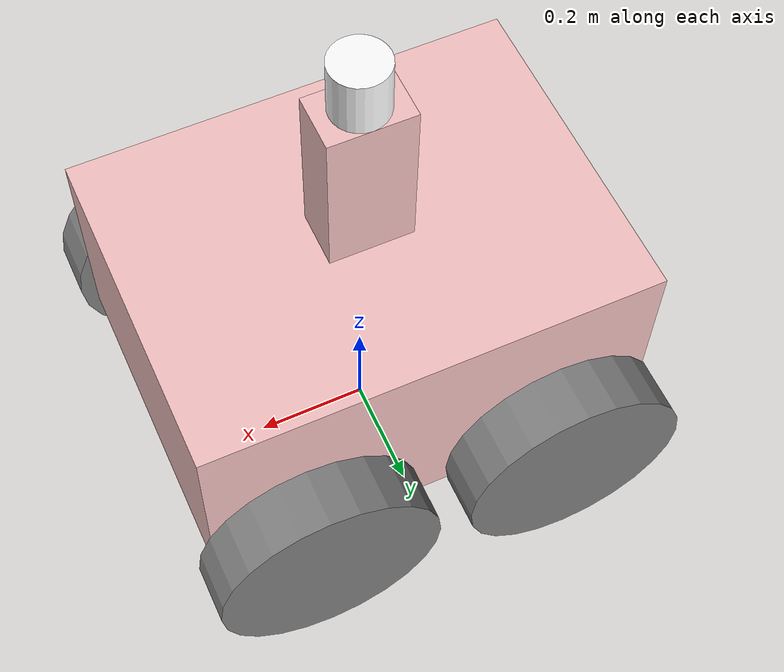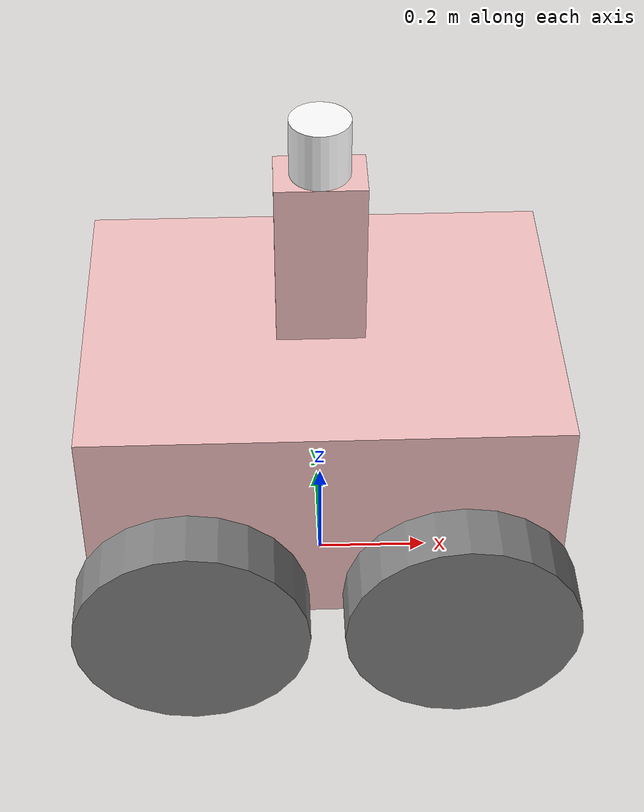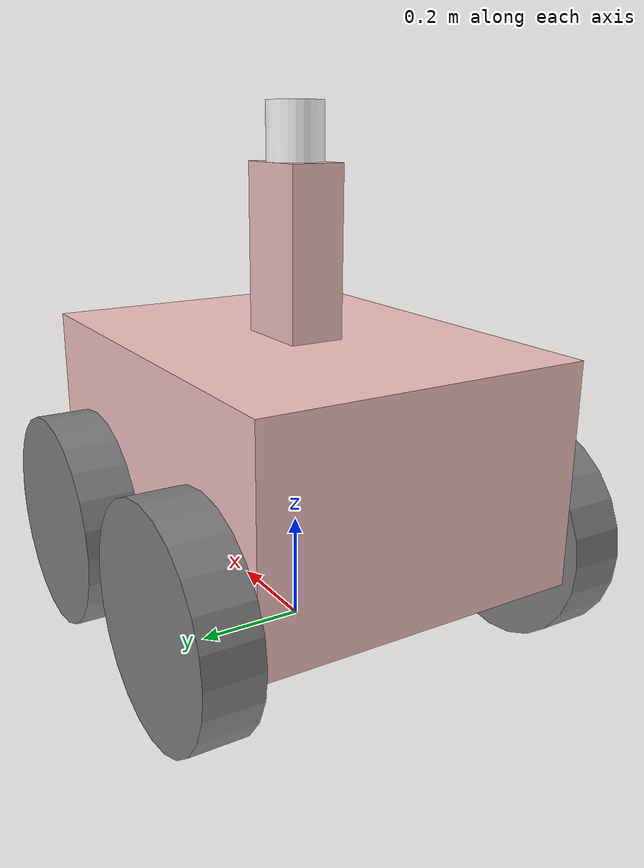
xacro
<?xml version="1.0"?>
<robot xmlns:xacro="http:/www.ros.org/wiki/xacro" name="my_robot">

    <material name="grey">
        <color rgba="0.5 0.5 0.5 1"/>
    </material>

    <material name="pink">
        <color rgba="0.96 0.76 0.76 1"/>
    </material>

    <material name="white">
        <color rgba="1 1 1 1"/>
    </material>

    <xacro:property name="base_length" value="0.8"/>
    <xacro:property name="base_width" value="0.6"/>
    <xacro:property name="base_height" value="0.4"/>
    <xacro:property name="base_mass" value="5"/>
    <xacro:property name="stand_height" value="0.3"/>
    <xacro:property name="stand_length" value="0.15"/>
    <xacro:property name="stand_width" value="0.1"/>
    <xacro:property name="stand_mass" value="1"/>
    <xacro:property name="wheel_radius" value="0.2"/>
    <xacro:property name="wheel_length" value="0.1"/>
    <xacro:property name="wheel_mass" value="1.2"/>
    <xacro:property name="camera_height" value="0.1"/>
    <xacro:property name="camera_length" value="0.1"/>
    <xacro:property name="camera_width" value="0.1"/>
    <xacro:property name="camera_mass" value="0.1"/>

    <xacro:include filename="$(find rover)/models/rover.gazebo"/>

    <joint name="stand_joint" type="fixed">
        <origin xyz="0 0 ${wheel_radius * 0.8 + base_height + stand_height/2}"/>
        <parent link="base_link"/>
        <child link="stand_link"/>
    </joint>

    <joint name="lidar_joint" type="fixed">
        <origin xyz="0 0 ${stand_height/2 + camera_height/2}"/>
        <parent link="stand_link"/>
        <child link="lidar_link"/>
    </joint>

    <joint name="imu_joint" type="fixed">
        <parent link="base_link"/>
        <child link="imu_link"/>
    </joint>

    <joint name="wheel_fr_joint" type="continuous">
        <parent link="base_link"/>
        <child link="wheel_fr_link"/>
        <axis xyz="0 1 0"/>
        <origin xyz="${2*base_length/7} ${-base_width/2 - wheel_length/2} ${wheel_radius}" rpy="0 0 0"/>
        <limit effort="20000" velocity="1.7"/>
        <dynamics damping="1.0" friction="10.0"/>
    </joint>

    <joint name="wheel_fl_joint" type="continuous">
        <parent link="base_link"/>
        <child link="wheel_fl_link"/>
        <axis xyz="0 1 0"/>
        <origin xyz="${2*base_length/7} ${base_width/2 + wheel_length/2} ${wheel_radius}" rpy="0 0 0"/>
        <limit effort="20000" velocity="1.7"/>
        <dynamics damping="1.0" friction="10.0"/>
    </joint>

    <joint name="wheel_br_joint" type="continuous">
        <parent link="base_link"/>
        <child link="wheel_br_link"/>
        <axis xyz="0 1 0"/>
        <origin xyz="${-2*base_length/7} ${-base_width/2 - wheel_length/2} ${wheel_radius}" rpy="0 0 0"/>
        <limit effort="20000" velocity="1.7"/>
        <dynamics damping="1.0" friction="10.0"/>
    </joint>

    <joint name="wheel_bl_joint" type="continuous">
        <parent link="base_link"/>
        <child link="wheel_bl_link"/>
        <axis xyz="0 1 0"/>
        <origin xyz="${-2*base_length/7} ${base_width/2 + wheel_length/2} ${wheel_radius}" rpy="0 0 0"/>
        <limit effort="20000" velocity="1.7"/>
        <dynamics damping="1.0" friction="10.0"/>
    </joint>

    <link name="base_link">
        <visual>
            <geometry>
                <box size="${base_length} ${base_width} ${base_height}"/>
            </geometry>
            <origin xyz="0 0 ${wheel_radius * 0.8 + base_height/2}" rpy="0 0 0"/>
            <material name="pink"/>
        </visual>
        <collision>
            <geometry>
                <box size="${base_length} ${base_width} ${base_height}"/>
            </geometry>
            <origin xyz="0 0 ${wheel_radius * 0.8 + base_height/2}" rpy="0 0 0"/>
        </collision>
        <inertial>
            <origin xyz="0 0 ${wheel_radius * 0.8 + base_height/2}" rpy="0 0 0"/>
            <mass value="${base_mass}"/>
            <inertia ixx="${(base_mass/12)*(base_height * base_height + base_length * base_length)}" ixy="0" ixz="0" iyy="${(base_mass/12)*(base_height * base_height + base_width * base_width)}" iyz="0" izz="${(base_mass/12)*(base_length * base_length + base_width * base_width)}"/>
        </inertial>
    </link>

    <link name="stand_link">
        <visual>
            <geometry>
                <box size="${stand_length} ${stand_width} ${stand_height}"/>
            </geometry>
            <origin xyz="0 0 0" rpy="0 0 0"/>
            <material name="pink"/>
        </visual>
        <collision>
            <geometry>
                <box size="${stand_length} ${stand_width} ${stand_height}"/>
            </geometry>
            <origin xyz="0 0 0" rpy="0 0 0"/>
        </collision>
        <inertial>
            <origin xyz="0 0 0" rpy="0 0 0"/>
            <mass value="${stand_mass}"/>
            <inertia ixx="${(stand_mass/12)*(stand_height * stand_height + stand_length * stand_length)}" ixy="0" ixz="0" iyy="${(stand_mass/12)*(stand_height * stand_height + stand_width * stand_width)}" iyz="0" izz="${(stand_mass/12)*(stand_length * stand_length + stand_width * stand_width)}"/>
        </inertial>
    </link>

    <link name="lidar_link">
        <visual>
            <geometry>
                <cylinder radius="${camera_width/2}" length="${camera_length}"/>
            </geometry>
            <origin xyz="0 0 0" rpy="0 0 0"/>
            <material name="white"/>
        </visual>
        <collision>
            <geometry>
                <cylinder radius="${camera_width/2}" length="${camera_length}"/>
            </geometry>
            <origin xyz="0 0 0" rpy="0 0 0"/>
        </collision>
        <inertial>
            <origin xyz="0 0 0" rpy="0 0 0"/>
            <mass value="${camera_mass}"/>
            <inertia ixx="${(camera_mass/12)*(3 * camera_width/2 * camera_width/2 + camera_length * camera_length)}" ixy="0" ixz="0" iyy="${(camera_mass/12)*(3 * camera_width/2 * camera_width/2 + camera_length * camera_length)}" iyz="0" izz="${(camera_mass * camera_width/2 * camera_width/2) / 2}"/>
        </inertial>
    </link>

    <link name="imu_link">
        <inertial>
            <mass value="0.01"/>
            <origin xyz="0 0 0" rpy="0 0 0"/>
            <inertia ixx="1e-5" ixy="0" ixz="0" iyy="1e-5" iyz="0" izz="1e-5"/>
        </inertial>
    </link>

    <link name="wheel_fr_link">
        <visual>
            <geometry>
                <cylinder radius="${wheel_radius}" length="${wheel_length}"/>
            </geometry>
            <origin xyz="0 0 0" rpy="${pi/2} 0 0"/>
            <material name="grey"/>
        </visual>
        <collision>
            <geometry>
                <cylinder radius="${wheel_radius}" length="${wheel_length}"/>
            </geometry>
            <origin xyz="0 0 0" rpy="${pi/2} 0 0"/>
        </collision>
        <inertial>
            <origin xyz="0 0 0" rpy="${pi/2} 0 0"/>
            <mass value="${wheel_mass}"/>
            <inertia ixx="${(wheel_mass/12)*(3 * wheel_radius * wheel_radius + wheel_length * wheel_length)}" ixy="0" ixz="0" iyy="${(wheel_mass/12)*(3 * wheel_radius * wheel_radius + wheel_length * wheel_length)}" iyz="0" izz="${(wheel_mass * wheel_radius * wheel_radius) / 2}"/>
        </inertial>
    </link>

    <link name="wheel_fl_link">
        <visual>
            <geometry>
                <cylinder radius="${wheel_radius}" length="${wheel_length}"/>
            </geometry>
            <origin xyz="0 0 0" rpy="${pi/2} 0 0"/>
            <material name="grey"/>
        </visual>
        <collision>
            <geometry>
                <cylinder radius="${wheel_radius}" length="${wheel_length}"/>
            </geometry>
            <origin xyz="0 0 0" rpy="${pi/2} 0 0"/>
        </collision>
        <inertial>
            <origin xyz="0 0 0" rpy="${pi/2} 0 0"/>
            <mass value="${wheel_mass}"/>
            <inertia ixx="${(wheel_mass/12)*(3 * wheel_radius * wheel_radius + wheel_length * wheel_length)}" ixy="0" ixz="0" iyy="${(wheel_mass/12)*(3 * wheel_radius * wheel_radius + wheel_length * wheel_length)}" iyz="0" izz="${(wheel_mass * wheel_radius * wheel_radius) / 2}"/>
        </inertial>
    </link>

    <link name="wheel_br_link">
        <visual>
            <geometry>
                <cylinder radius="${wheel_radius}" length="${wheel_length}"/>
            </geometry>
            <origin xyz="0 0 0" rpy="${pi/2} 0 0"/>
            <material name="grey"/>
        </visual>
        <collision>
            <geometry>
                <cylinder radius="${wheel_radius}" length="${wheel_length}"/>
            </geometry>
            <origin xyz="0 0 0" rpy="${pi/2} 0 0"/>
        </collision>
        <inertial>
            <origin xyz="0 0 0" rpy="${pi/2} 0 0"/>
            <mass value="${wheel_mass}"/>
            <inertia ixx="${(wheel_mass/12)*(3 * wheel_radius * wheel_radius + wheel_length * wheel_length)}" ixy="0" ixz="0" iyy="${(wheel_mass/12)*(3 * wheel_radius * wheel_radius + wheel_length * wheel_length)}" iyz="0" izz="${(wheel_mass * wheel_radius * wheel_radius) / 2}"/>
        </inertial>
    </link>

    <link name="wheel_bl_link">
        <visual>
            <geometry>
                <cylinder radius="${wheel_radius}" length="${wheel_length}"/>
            </geometry>
            <origin xyz="0 0 0" rpy="${pi/2} 0 0"/>
            <material name="grey"/>
        </visual>
        <collision>
            <geometry>
                <cylinder radius="${wheel_radius}" length="${wheel_length}"/>
            </geometry>
            <origin xyz="0 0 0" rpy="${pi/2} 0 0"/>
        </collision>
        <inertial>
            <origin xyz="0 0 0" rpy="${pi/2} 0 0"/>
            <mass value="${wheel_mass}"/>
            <inertia ixx="${(wheel_mass/12)*(3 * wheel_radius * wheel_radius + wheel_length * wheel_length)}" ixy="0" ixz="0" iyy="${(wheel_mass/12)*(3 * wheel_radius * wheel_radius + wheel_length * wheel_length)}" iyz="0" izz="${(wheel_mass * wheel_radius * wheel_radius) / 2}"/>
        </inertial>
    </link>

</robot>
